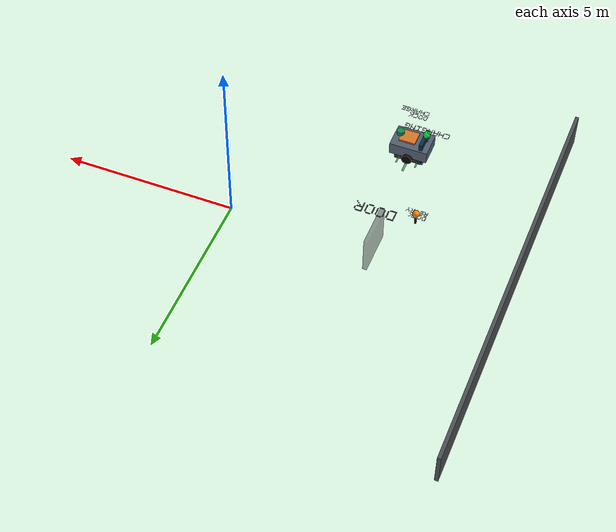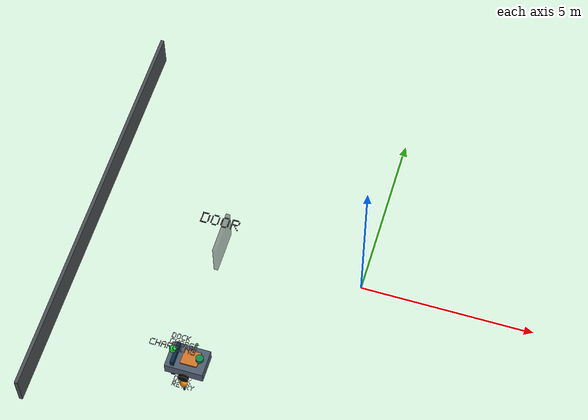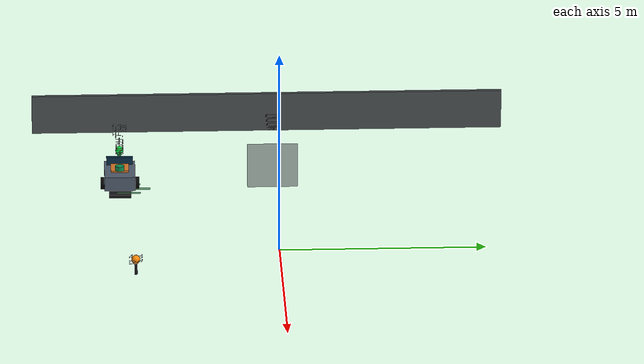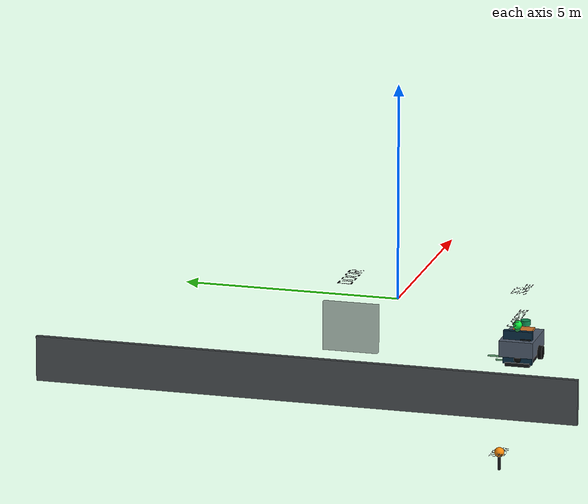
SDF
<sdf version="1.9">
 <world name="factory_patrol">
  <model name="west_wall">
   <static>true</static>
   <pose>-8 0 0.5 0 0 0</pose>
   <link name="link">
    <collision name="c"><geometry><box><size>0.1 12 1</size></box></geometry></collision>
    <visual name="v">
     <geometry><box><size>0.1 12 1</size></box></geometry>
     <material><diffuse>0.30 0.32 0.33 1</diffuse></material>
    </visual>
   </link>
  </model>
  <model name="showcase_dock_guidance">
   <static>true</static>
   <pose>-3.90 -3.48 0.075 0 0 0</pose>
   <link name="link">
    <visual name="approach_lane">
     <pose>0 0 0 0 0 1.5708</pose>
     <geometry><box><size>0.86 0.06 0.024</size></box></geometry>
     <material><diffuse>0.22 0.58 0.32 0.74</diffuse><emissive>0.00 0.08 0.02 1</emissive></material>
    </visual>
    <visual name="left_alignment">
     <pose>-0.28 -0.10 0.006 0 0 1.5708</pose>
     <geometry><box><size>0.58 0.04 0.024</size></box></geometry>
     <material><diffuse>0.22 0.58 0.32 0.74</diffuse><emissive>0.00 0.08 0.02 1</emissive></material>
    </visual>
    <visual name="right_alignment">
     <pose>0.28 -0.10 0.006 0 0 1.5708</pose>
     <geometry><box><size>0.58 0.04 0.024</size></box></geometry>
     <material><diffuse>0.22 0.58 0.32 0.74</diffuse><emissive>0.00 0.08 0.02 1</emissive></material>
    </visual>
   </link>
  </model>
  <model name="receiving_door">
   <static>true</static>
   <pose>-4.15 0 0 0 0 0</pose>
   <link name="link">
    <visual name="frame_visual">
     <pose>0 0 0.55 0 0 0</pose>
     <geometry><box><size>0.12 1.25 1.1</size></box></geometry>
     <material><diffuse>0.12 0.12 0.14 0.45</diffuse></material>
    </visual>
   </link>
  </model>
  <model name="receiving_door_panel">
   <static>false</static>
   <pose>-4.15 0 0.55 0 0 0</pose>
   <link name="link">
    <gravity>false</gravity>
    <visual name="panel_visual">
     <geometry><box><size>0.10 1.00 1.00</size></box></geometry>
     <material><diffuse>0.88 0.16 0.12 0.85</diffuse></material>
    </visual>
   </link>
  </model>
  <model name="charging_dock">
   <static>true</static>
   <pose>-3.9 -3.8 0 0 0 0</pose>
   <link name="base">
    <collision name="base_collision">
     <pose>0 0 0.04 0 0 0</pose>
     <geometry><box><size>0.85 0.55 0.08</size></box></geometry>
    </collision>
    <visual name="base_visual">
     <pose>0 0 0.04 0 0 0</pose>
     <geometry><box><size>0.85 0.55 0.08</size></box></geometry>
     <material><diffuse>0.08 0.08 0.09 1</diffuse></material>
    </visual>
    <visual name="back_panel">
     <pose>-0.34 0 0.42 0 0 0</pose>
     <geometry><box><size>0.10 0.65 0.75</size></box></geometry>
     <material><diffuse>0.04 0.18 0.28 1</diffuse></material>
    </visual>
    <visual name="charge_contact_left">
     <pose>0.10 0.14 0.13 0 0 0</pose>
     <geometry><box><size>0.16 0.04 0.08</size></box></geometry>
     <material><diffuse>0.76 0.58 0.22 1</diffuse></material>
    </visual>
    <visual name="charge_contact_right">
     <pose>0.10 -0.14 0.13 0 0 0</pose>
     <geometry><box><size>0.16 0.04 0.08</size></box></geometry>
     <material><diffuse>0.76 0.58 0.22 1</diffuse></material>
    </visual>
    <visual name="dock_cable_gland">
     <pose>-0.40 0.25 0.52 0 1.5708 0</pose>
     <geometry><cylinder><radius>0.035</radius><length>0.10</length></cylinder></geometry>
     <material><diffuse>0.03 0.03 0.035 1</diffuse></material>
    </visual>
    <visual name="dock_service_panel">
     <pose>-0.405 -0.18 0.48 0 0 0</pose>
     <geometry><box><size>0.025 0.22 0.30</size></box></geometry>
     <material><diffuse>0.12 0.16 0.18 1</diffuse></material>
    </visual>
    <visual name="dock_service_slot_1">
     <pose>-0.422 -0.18 0.55 0 0 0</pose>
     <geometry><box><size>0.030 0.15 0.026</size></box></geometry>
     <material><diffuse>0.55 0.58 0.54 1</diffuse></material>
    </visual>
    <visual name="dock_service_slot_2">
     <pose>-0.422 -0.18 0.43 0 0 0</pose>
     <geometry><box><size>0.030 0.15 0.026</size></box></geometry>
     <material><diffuse>0.55 0.58 0.54 1</diffuse></material>
    </visual>
    <visual name="status_light">
     <pose>-0.40 0 0.85 0 0 0</pose>
     <geometry><sphere><radius>0.06</radius></sphere></geometry>
     <material><diffuse>0.16 0.58 0.28 1</diffuse><emissive>0.00 0.10 0.03 1</emissive></material>
    </visual>
   </link>
  </model>
  <model name="charging_status_beacon">
   <static>false</static>
   <pose>-4.30 -3.80 0.95 0 0 0</pose>
   <link name="link">
    <gravity>false</gravity>
    <visual name="beacon_visual">
     <geometry><sphere><radius>0.10</radius></sphere></geometry>
     <material><diffuse>0.05 0.95 0.25 0.95</diffuse><emissive>0.02 0.75 0.12 1</emissive></material>
    </visual>
   </link>
  </model>
  <model name="docking_retry_warning_beacon">
   <static>false</static>
   <pose>-4.30 -3.42 -2 0 0 0</pose>
   <link name="link">
    <gravity>false</gravity>
    <visual name="beacon_visual">
     <geometry><sphere><radius>0.11</radius></sphere></geometry>
     <material><diffuse>1.0 0.55 0.04 0.95</diffuse><emissive>0.70 0.24 0.02 1</emissive></material>
    </visual>
    <visual name="base_visual">
     <pose>0 0 -0.20 0 0 0</pose>
     <geometry><cylinder><radius>0.035</radius><length>0.40</length></cylinder></geometry>
     <material><diffuse>0.08 0.08 0.09 1</diffuse></material>
    </visual>
   </link>
  </model>
  <model name="label_dock">
   <static>false</static>
   <pose>-3.90 -3.80 1.65 0 0 0.00</pose>
   <link name="link">
    <gravity>false</gravity>
    <visual name="text_mesh_visual">
     <cast_shadows>false</cast_shadows>
     <geometry><mesh><uri>../media/text_meshes/label_dock.obj</uri></mesh></geometry>
     <material>
      <ambient>0.000 0.000 0.000 1</ambient>
      <diffuse>0.000 0.000 0.000 1</diffuse>
      <emissive>0 0 0 1</emissive>
      <double_sided>true</double_sided>
     </material>
    </visual>
   </link>
  </model>
  <model name="label_door">
   <static>false</static>
   <pose>-4.15 0.00 1.70 0 0 0.00</pose>
   <link name="link">
    <gravity>false</gravity>
    <visual name="text_mesh_visual">
     <cast_shadows>false</cast_shadows>
     <geometry><mesh><uri>../media/text_meshes/label_door.obj</uri></mesh></geometry>
     <material>
      <ambient>0.000 0.000 0.000 1</ambient>
      <diffuse>0.000 0.000 0.000 1</diffuse>
      <emissive>0 0 0 1</emissive>
      <double_sided>true</double_sided>
     </material>
    </visual>
   </link>
  </model>
  <model name="label_charging_status">
   <static>false</static>
   <pose>-4.30 -3.80 1.10 0 0 0.00</pose>
   <link name="link">
    <gravity>false</gravity>
    <visual name="text_mesh_visual">
     <cast_shadows>false</cast_shadows>
     <geometry><mesh><uri>../media/text_meshes/label_charging_status.obj</uri></mesh></geometry>
     <material>
      <ambient>0.000 0.000 0.000 1</ambient>
      <diffuse>0.000 0.000 0.000 1</diffuse>
      <emissive>0 0 0 1</emissive>
      <double_sided>true</double_sided>
     </material>
    </visual>
   </link>
  </model>
  <model name="label_docking_retry_status">
   <static>false</static>
   <pose>-4.30 -3.42 -2 0 0 0.00</pose>
   <link name="link">
    <gravity>false</gravity>
    <visual name="text_mesh_visual">
     <cast_shadows>false</cast_shadows>
     <geometry><mesh><uri>../media/text_meshes/label_docking_retry_status.obj</uri></mesh></geometry>
     <material>
      <ambient>0.000 0.000 0.000 1</ambient>
      <diffuse>0.000 0.000 0.000 1</diffuse>
      <emissive>0 0 0 1</emissive>
      <double_sided>true</double_sided>
     </material>
    </visual>
   </link>
  </model>
  <model name="mobile_robot_2">
   <static>false</static>
   <pose>-3.9 -3.8 0.24 0 0 0</pose>
   <link name="base_link">
    <inertial><mass>24.0</mass><inertia><ixx>0.18</ixx><iyy>0.28</iyy><izz>0.36</izz></inertia></inertial>
    <collision name="base_collision">
     <pose>0 0 0.18 0 0 0</pose>
     <geometry><box><size>1.10 0.76 0.36</size></box></geometry>
    </collision>
    <visual name="base_visual">
     <pose>0 0 0.18 0 0 0</pose>
     <geometry><box><size>1.10 0.76 0.36</size></box></geometry>
     <material><diffuse>0.32 0.37 0.44 1</diffuse></material>
    </visual>
    <visual name="fleet_label_visual">
     <pose>0.10 0 0.43 0 0 0</pose>
     <geometry><box><size>0.48 0.44 0.05</size></box></geometry>
     <material><diffuse>0.85 0.47 0.16 1</diffuse></material>
    </visual>
    <visual name="lidar_visual">
     <pose>0.36 0 0.54 0 0 0</pose>
     <geometry><cylinder><radius>0.11</radius><length>0.11</length></cylinder></geometry>
     <material><diffuse>0.05 0.55 0.32 1</diffuse></material>
    </visual>
    <sensor name="lidar" type="gpu_lidar">
     <pose>0.36 0 0.54 0 0 0</pose>
     <topic>/robot_2/sim/scan</topic>
     <update_rate>10</update_rate>
     <always_on>true</always_on>
     <lidar>
      <scan>
       <horizontal>
        <samples>360</samples>
        <resolution>1</resolution>
        <min_angle>-3.14159265359</min_angle>
        <max_angle>3.14159265359</max_angle>
       </horizontal>
      </scan>
      <range><min>0.08</min><max>12.0</max><resolution>0.01</resolution></range>
     </lidar>
    </sensor>
   </link>
   <link name="left_wheel">
    <pose>0 0.43 0 1.57079632679 0 0</pose>
    <inertial><mass>0.7</mass><inertia><ixx>0.002</ixx><iyy>0.002</iyy><izz>0.002</izz></inertia></inertial>
    <collision name="collision">
     <geometry><cylinder><radius>0.15</radius><length>0.09</length></cylinder></geometry>
    </collision>
    <visual name="visual">
     <geometry><cylinder><radius>0.15</radius><length>0.09</length></cylinder></geometry>
     <material><diffuse>0.02 0.02 0.02 1</diffuse></material>
    </visual>
   </link>
   <link name="right_wheel">
    <pose>0 -0.43 0 1.57079632679 0 0</pose>
    <inertial><mass>0.7</mass><inertia><ixx>0.002</ixx><iyy>0.002</iyy><izz>0.002</izz></inertia></inertial>
    <collision name="collision">
     <geometry><cylinder><radius>0.15</radius><length>0.09</length></cylinder></geometry>
    </collision>
    <visual name="visual">
     <geometry><cylinder><radius>0.15</radius><length>0.09</length></cylinder></geometry>
     <material><diffuse>0.02 0.02 0.02 1</diffuse></material>
    </visual>
   </link>
   <link name="caster_wheel">
    <pose>-0.4 0 -0.08 0 0 0</pose>
    <collision name="collision"><geometry><sphere><radius>0.08</radius></sphere></geometry></collision>
    <visual name="visual">
     <geometry><sphere><radius>0.08</radius></sphere></geometry>
     <material><diffuse>0.02 0.02 0.02 1</diffuse></material>
    </visual>
   </link>
   <joint name="left_wheel_joint" type="revolute">
    <parent>base_link</parent>
    <child>left_wheel</child>
    <axis><xyz>0 1 0</xyz></axis>
   </joint>
   <joint name="right_wheel_joint" type="revolute">
    <parent>base_link</parent>
    <child>right_wheel</child>
    <axis><xyz>0 1 0</xyz></axis>
   </joint>
   <joint name="caster_joint" type="fixed"><parent>base_link</parent><child>caster_wheel</child></joint>
   <plugin filename="gz-sim-diff-drive-system" name="gz::sim::systems::DiffDrive">
    <left_joint>left_wheel_joint</left_joint>
    <right_joint>right_wheel_joint</right_joint>
    <wheel_separation>0.86</wheel_separation>
    <wheel_radius>0.15</wheel_radius>
    <topic>/robot_2/cmd_vel</topic>
    <odom_topic>/model/mobile_robot_2/odometry</odom_topic>
    <frame_id>robot_2/odom</frame_id>
    <child_frame_id>robot_2/base_link</child_frame_id>
   </plugin>
  </model>
 </world>
</sdf>
